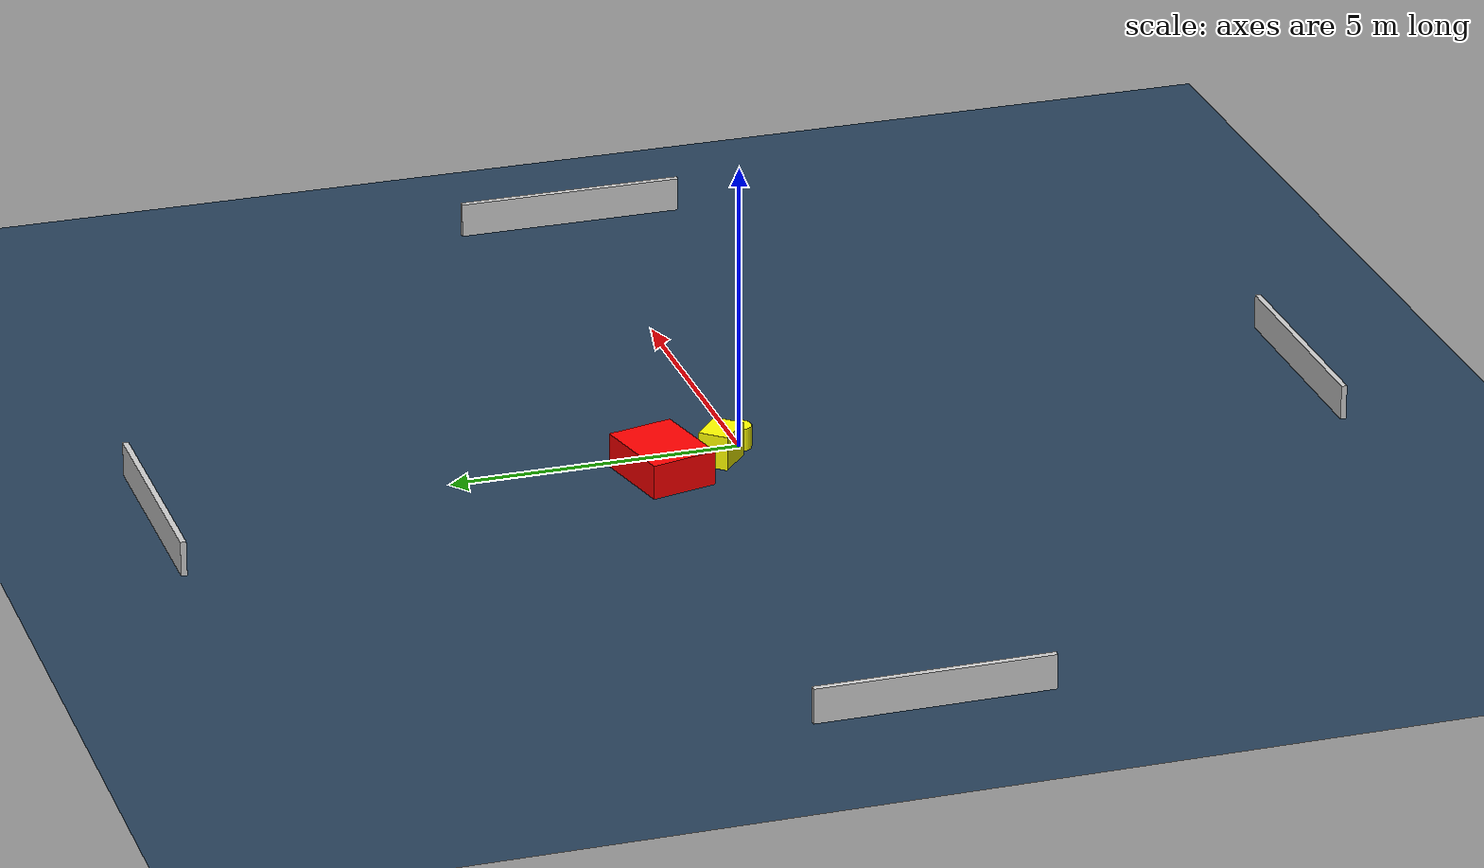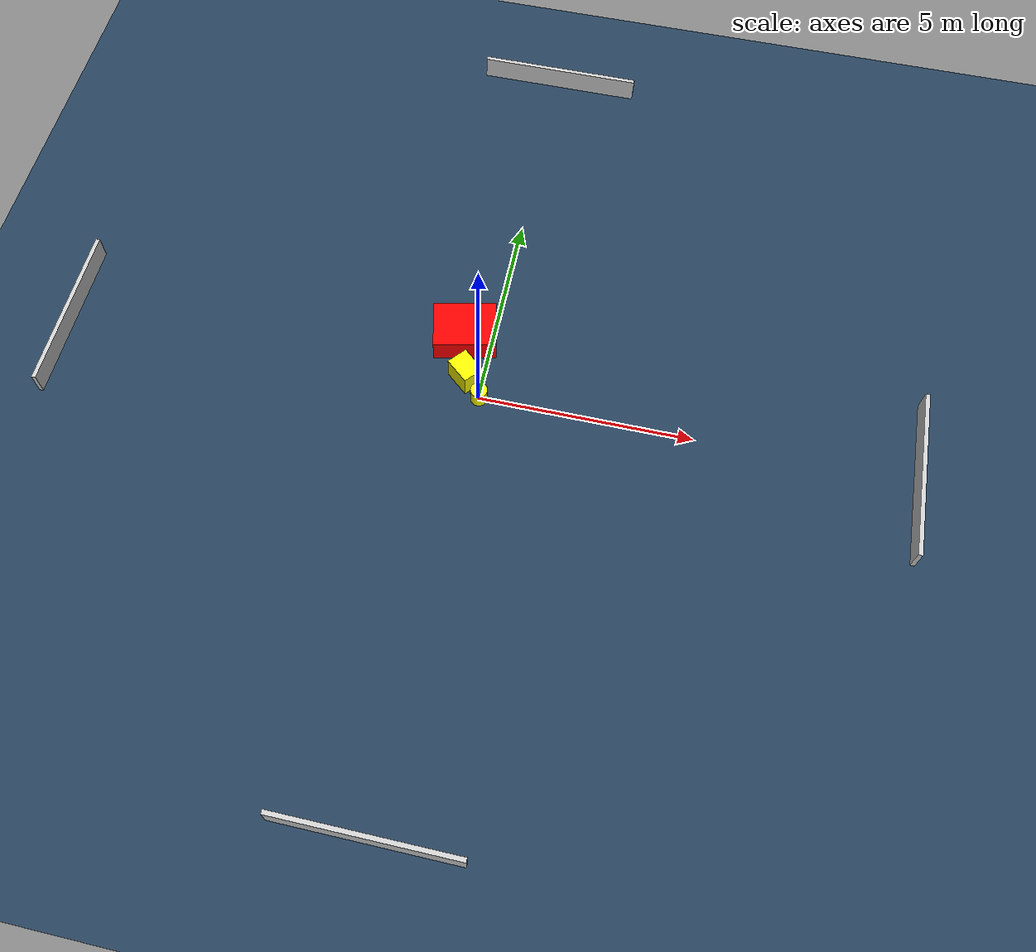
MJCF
<?xml version="1.0" ?>
<mujoco model="generated_environment">
  <option timestep="0.01" integrator="RK4" cone="elliptic"/>
  <default>
    <geom density="1"/>
  </default>
  <asset>
    <texture builtin="gradient" height="3072" name="skybox" rgb1="0.3 0.5 0.7" rgb2="0 0 0" type="skybox" width="512"/>
    <texture builtin="checker" height="300" name="groundplane" rgb1="0.2 0.3 0.4" rgb2="0.1 0.2 0.3" type="2d" width="300"/>
    <material name="groundplane" reflectance="0.2" texrepeat="5 5" texture="groundplane"/>
  </asset>
  <worldbody>
    <light dir="0 0 -1" directional="true" pos="0 0 1.5"/>
    <geom condim="3" friction="0.5 0.005 0.001" material="groundplane" name="floor" pos="0 0 0" size="0 0 0.05" type="plane"/>
    <body name="walls">
      <geom name="wall_1" condim="4" pos="-10.0 0.0 0.3" rgba="0.800000011920929 0.800000011920929 0.800000011920929 1.0" size="0.05 2.0 0.3" type="box"/>
      <geom name="wall_2" condim="4" pos="10.0 0.0 0.3" rgba="0.800000011920929 0.800000011920929 0.800000011920929 1.0" size="0.05 2.0 0.3" type="box"/>
      <geom name="wall_3" condim="4" pos="0.0 -10.0 0.3" rgba="0.800000011920929 0.800000011920929 0.800000011920929 1.0" size="2.0 0.05 0.3" type="box"/>
      <geom name="wall_4" condim="4" pos="0.0 10.0 0.3" rgba="0.800000011920929 0.800000011920929 0.800000011920929 1.0" size="2.0 0.05 0.3" type="box"/>
    </body>
    <body name="robot">
      <joint name="joint_x" type="slide" pos="0 0 0" axis="1 0 0"/>
      <joint name="joint_y" type="slide" pos="0 0 0" axis="0 1 0"/>
      <geom name="robot" type="cylinder" pos="0.0 0.0 0.2" size="0.2 0.2 0.0" mass="5.0" friction="1.0 0.005 0.0001" condim="4" rgba="1.0 1.0 0.0 1.0"/>
    </body>
    <body name="obstacle_1_movable">
      <geom name="obstacle_1_movable" condim="4" pos="-0.4214040555116919 0.4591569591242727 0.3" euler="0 0 49.128888089235254" friction="0.0 0.005 0.001" rgba="1.0 1.0 0.0 1.0" size="0.2584591708903752 0.3321703640553243 0.3" type="box" mass="0.1"/>
      <joint type="free"/>
    </body>
    <body name="obstacle_2_static">
      <geom name="obstacle_2_static" condim="4" pos="-0.6898095127924547 1.564817492866461 0.3" euler="0 0 102.93245531144014" friction="0.0 0.005 0.001" rgba="1.0 0.0 0.0 1.0" size="0.5779932074972499 0.7420606741317135 0.3" type="box"/>
    </body>
  </worldbody>
  <actuator>
    <motor name="actuator_x" joint="joint_x" gear="1" ctrlrange="-1 1"/>
    <motor name="actuator_y" joint="joint_y" gear="1" ctrlrange="-1 1"/>
  </actuator>
</mujoco>
